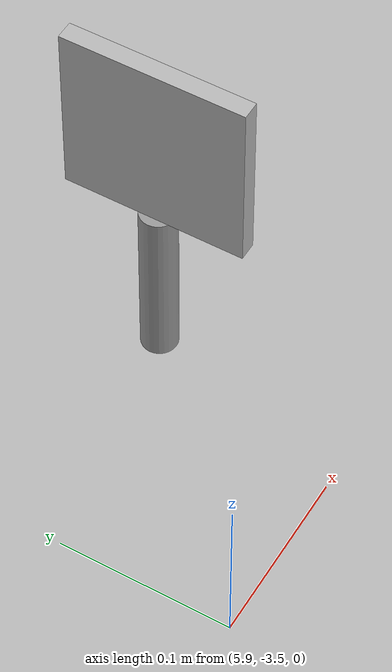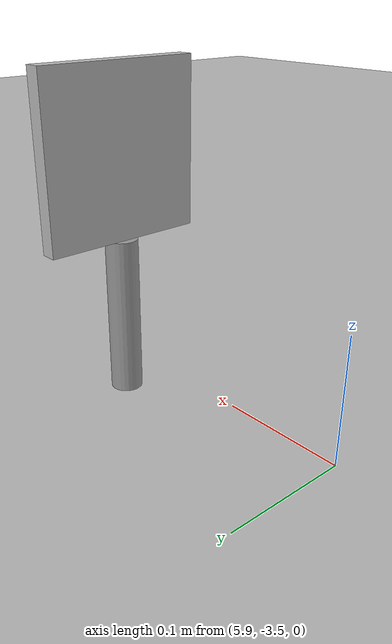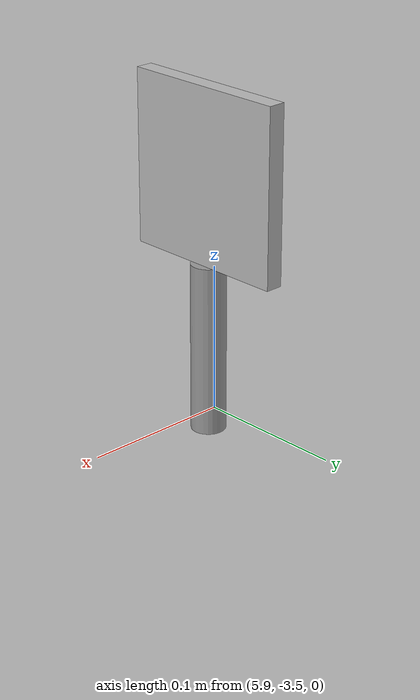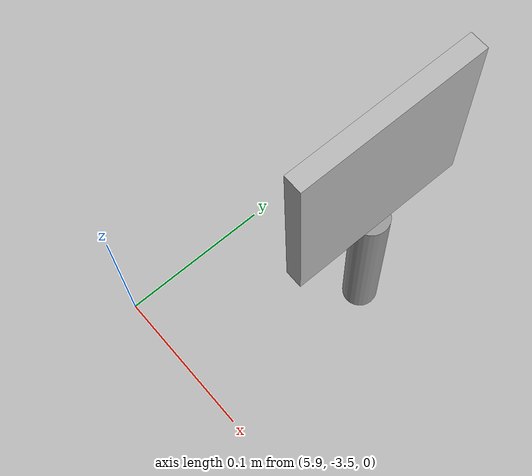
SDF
<sdf version="1.5">
  <world name="default">
    <!-- A global light source -->
    <include>
      <uri>model://sun</uri>
    </include>

    <!-- sign_board_30_small -->
    <include>
        <uri>model://sign_left_turn</uri>
        <pose>6.0 -3.4 0.06 0 0 0</pose>
    </include>
    <!-- road line test -->
    <include>
        <uri>model://road_line_test</uri>
        <pose>0 0 0.05 0 0 1.57</pose>
    </include>
  </world>
</sdf>

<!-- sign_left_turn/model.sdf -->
<sdf version='1.7'>
  <model name='sign_left_turn'>
    <link name='link_0'>
      <inertial>
        <mass>0.00689886</mass>
        <inertia>
          <ixx>4.77026e-05</ixx>
          <ixy>0</ixy>
          <ixz>0</ixz>
          <iyy>4.77026e-05</iyy>
          <iyz>0</iyz>
          <izz>9.04191e-05</izz>
        </inertia>
        <pose>0 0 0 0 -0 0</pose>
      </inertial>
      <pose>0 0 -0.1 0 -0 0</pose>
      <visual name='visual'>
        <pose>0 0 0 0 -0 0</pose>
        <geometry>
          <cylinder>
            <radius>0.05</radius>
            <length>0.02</length>
          </cylinder>
        </geometry>
        <material>
          <lighting>1</lighting>
          <script>
            <uri>file://media/materials/scripts/gazebo.material</uri>
            <name>Gazebo/Black</name>
          </script>
          <shader type='pixel'/>
          <emissive>0 0 0 1</emissive>
        </material>
        <transparency>0</transparency>
        <cast_shadows>1</cast_shadows>
      </visual>
      <collision name='collision'>
        <laser_retro>0</laser_retro>
        <max_contacts>10</max_contacts>
        <pose>0 0 0 0 -0 0</pose>
        <geometry>
          <cylinder>
            <radius>0.05</radius>
            <length>0.02</length>
          </cylinder>
        </geometry>
        <surface>
          <friction>
            <ode>
              <mu>1</mu>
              <mu2>1</mu2>
              <fdir1>0 0 0</fdir1>
              <slip1>0</slip1>
              <slip2>0</slip2>
            </ode>
            <torsional>
              <coefficient>1</coefficient>
              <patch_radius>0</patch_radius>
              <surface_radius>0</surface_radius>
              <use_patch_radius>1</use_patch_radius>
              <ode>
                <slip>0</slip>
              </ode>
            </torsional>
          </friction>
          <bounce>
            <restitution_coefficient>0</restitution_coefficient>
            <threshold>1e+06</threshold>
          </bounce>
          <contact>
            <collide_without_contact>0</collide_without_contact>
            <collide_without_contact_bitmask>1</collide_without_contact_bitmask>
            <collide_bitmask>1</collide_bitmask>
            <ode>
              <soft_cfm>0</soft_cfm>
              <soft_erp>0.2</soft_erp>
              <kp>1e+13</kp>
              <kd>1</kd>
              <max_vel>0.01</max_vel>
              <min_depth>0</min_depth>
            </ode>
            <bullet>
              <split_impulse>1</split_impulse>
              <split_impulse_penetration_threshold>-0.01</split_impulse_penetration_threshold>
              <soft_cfm>0</soft_cfm>
              <soft_erp>0.2</soft_erp>
              <kp>1e+13</kp>
              <kd>1</kd>
            </bullet>
          </contact>
        </surface>
      </collision>
    </link>
    <link name='link_1'>
      <inertial>
        <mass>0.000371732</mass>
        <inertia>
          <ixx>8.63892e-05</ixx>
          <ixy>0</ixy>
          <ixz>0</ixz>
          <iyy>8.63892e-05</iyy>
          <iyz>0</iyz>
          <izz>3.30867e-06</izz>
        </inertia>
        <pose>0 0 0 0 0 0</pose>
      </inertial>
      <pose>0 0 0 0 0 0</pose>
      <visual name='visual'>
        <pose>0 0 0 0 -0 0</pose>
        <geometry>
          <cylinder>
            <radius>0.01</radius>
            <length>0.2</length>
          </cylinder>
        </geometry>
        <material>
          <lighting>1</lighting>
          <script>
            <uri>file://media/materials/scripts/gazebo.material</uri>
            <name>Gazebo/Grey</name>
          </script>
          <shader type='pixel'/>
          <emissive>0 0 0 1</emissive>
        </material>
        <transparency>0</transparency>
        <cast_shadows>1</cast_shadows>
      </visual>
      <collision name='collision'>
        <laser_retro>0</laser_retro>
        <max_contacts>10</max_contacts>
        <pose>0 0 0 0 -0 0</pose>
        <geometry>
          <cylinder>
            <radius>0.01</radius>
            <length>0.2</length>
          </cylinder>
        </geometry>
        <surface>
          <friction>
            <ode>
              <mu>1</mu>
              <mu2>1</mu2>
              <fdir1>0 0 0</fdir1>
              <slip1>0</slip1>
              <slip2>0</slip2>
            </ode>
            <torsional>
              <coefficient>1</coefficient>
              <patch_radius>0</patch_radius>
              <surface_radius>0</surface_radius>
              <use_patch_radius>1</use_patch_radius>
              <ode>
                <slip>0</slip>
              </ode>
            </torsional>
          </friction>
          <bounce>
            <restitution_coefficient>0</restitution_coefficient>
            <threshold>1e+06</threshold>
          </bounce>
          <contact>
            <collide_without_contact>0</collide_without_contact>
            <collide_without_contact_bitmask>1</collide_without_contact_bitmask>
            <collide_bitmask>1</collide_bitmask>
            <ode>
              <soft_cfm>0</soft_cfm>
              <soft_erp>0.2</soft_erp>
              <kp>1e+13</kp>
              <kd>1</kd>
              <max_vel>0.01</max_vel>
              <min_depth>0</min_depth>
            </ode>
            <bullet>
              <split_impulse>1</split_impulse>
              <split_impulse_penetration_threshold>-0.01</split_impulse_penetration_threshold>
              <soft_cfm>0</soft_cfm>
              <soft_erp>0.2</soft_erp>
              <kp>1e+13</kp>
              <kd>1</kd>
            </bullet>
          </contact>
        </surface>
      </collision>
    </link>
    <link name='link_2'>
      <inertial>
        <mass>0.000803864</mass>
        <inertia>
          <ixx>0.000152874</ixx>
          <ixy>0</ixy>
          <ixz>0</ixz>
          <iyy>7.89053e-05</iyy>
          <iyz>0</iyz>
          <izz>8.06245e-05</izz>
        </inertia>
        <pose>0 0 0 0 0 0</pose>
      </inertial>
      <pose>0 0 0.15 0 0 0</pose>
      <visual name='visual'>
        <pose>0 0 0 0 0 0</pose>
        <geometry>
          <box>
            <size>0.01 0.1 0.1</size>
          </box>
        </geometry>

        <material>
          <script>
            <uri>model://sign_left_turn/materials/scripts</uri>
            <uri>model://sign_left_turn/materials/textures</uri>
            <name>sign_left_turn/Diffuse</name>
          </script>
        </material>

        <transparency>0</transparency>
        <cast_shadows>1</cast_shadows>
      </visual>
      <collision name='collision'>
        <laser_retro>0</laser_retro>
        <max_contacts>10</max_contacts>
        <pose>0 0 0 0 -0 0</pose>
        <geometry>
          <box>
            <size>0.01 0.1 0.1</size>
          </box>
        </geometry>
        <surface>
          <friction>
            <ode>
              <mu>1</mu>
              <mu2>1</mu2>
              <fdir1>0 0 0</fdir1>
              <slip1>0</slip1>
              <slip2>0</slip2>
            </ode>
            <torsional>
              <coefficient>1</coefficient>
              <patch_radius>0</patch_radius>
              <surface_radius>0</surface_radius>
              <use_patch_radius>1</use_patch_radius>
              <ode>
                <slip>0</slip>
              </ode>
            </torsional>
          </friction>
          <bounce>
            <restitution_coefficient>0</restitution_coefficient>
            <threshold>1e+06</threshold>
          </bounce>
          <contact>
            <collide_without_contact>0</collide_without_contact>
            <collide_without_contact_bitmask>1</collide_without_contact_bitmask>
            <collide_bitmask>1</collide_bitmask>
            <ode>
              <soft_cfm>0</soft_cfm>
              <soft_erp>0.2</soft_erp>
              <kp>1e+13</kp>
              <kd>1</kd>
              <max_vel>0.01</max_vel>
              <min_depth>0</min_depth>
            </ode>
            <bullet>
              <split_impulse>1</split_impulse>
              <split_impulse_penetration_threshold>-0.01</split_impulse_penetration_threshold>
              <soft_cfm>0</soft_cfm>
              <soft_erp>0.2</soft_erp>
              <kp>1e+13</kp>
              <kd>1</kd>
            </bullet>
          </contact>
        </surface>
      </collision>
    </link>
    <joint name='link_0_JOINT_0' type='fixed'>
      <parent>link_0</parent>
      <child>link_1</child>
      <pose>0 0 0 0 -0 0</pose>
      <physics>
        <ode>
          <limit>
            <cfm>0</cfm>
            <erp>0.2</erp>
          </limit>
          <suspension>
            <cfm>0</cfm>
            <erp>0.2</erp>
          </suspension>
        </ode>
      </physics>
    </joint>
    <joint name='link_0_JOINT_1' type='fixed'>
      <parent>link_0</parent>
      <child>link_2</child>
      <pose>0 0 0 0 -0 0</pose>
      <physics>
        <ode>
          <limit>
            <cfm>0</cfm>
            <erp>0.2</erp>
          </limit>
          <suspension>
            <cfm>0</cfm>
            <erp>0.2</erp>
          </suspension>
        </ode>
      </physics>
    </joint>
    <static>0</static>
    <allow_auto_disable>1</allow_auto_disable>
  </model>
</sdf>

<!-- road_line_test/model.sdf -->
<sdf version='1.7'>
  <model name='road'>
    <link name='link_0'>
      <inertial>
        <mass>10</mass>
        <inertia>
          <ixx>24.9463</ixx>
          <ixy>0</ixy>
          <ixz>0</ixz>
          <iyy>10.9133</iyy>
          <iyz>0</iyz>
          <izz>35.8596</izz>
        </inertia>
        <pose>0 0 0 0 -0 0</pose>
      </inertial>
      <pose>-0 -0 -0 0 -0 0</pose>
      <visual name='visual'>
        <pose>0 0 0 0 -0 0</pose>
        <geometry>
          <box>
            <size>10 15 0.02</size>
          </box>
        </geometry>
        <material>
          <script>
            <uri>model://road_line_test/materials/scripts</uri>
            <uri>model://road_line_test/materials/textures</uri>
            <name>road_line_test/Diffuse</name>
          </script>
        </material>
        <transparency>0</transparency>
        <cast_shadows>1</cast_shadows>
      </visual>
      <collision name='collision'>
        <laser_retro>0</laser_retro>
        <max_contacts>10</max_contacts>
        <pose>0 0 0 0 -0 0</pose>
        <geometry>
          <box>
            <size>10 15 0.02</size>
          </box>
        </geometry>
        <surface>
          <friction>
            <ode>
              <mu>1</mu>
              <mu2>1</mu2>
              <fdir1>0 0 0</fdir1>
              <slip1>0</slip1>
              <slip2>0</slip2>
            </ode>
            <torsional>
              <coefficient>1</coefficient>
              <patch_radius>0</patch_radius>
              <surface_radius>0</surface_radius>
              <use_patch_radius>1</use_patch_radius>
              <ode>
                <slip>0</slip>
              </ode>
            </torsional>
          </friction>
          <bounce>
            <restitution_coefficient>0</restitution_coefficient>
            <threshold>1e+06</threshold>
          </bounce>
          <contact>
            <collide_without_contact>0</collide_without_contact>
            <collide_without_contact_bitmask>1</collide_without_contact_bitmask>
            <collide_bitmask>1</collide_bitmask>
            <ode>
              <soft_cfm>0</soft_cfm>
              <soft_erp>0.2</soft_erp>
              <kp>1e+13</kp>
              <kd>1</kd>
              <max_vel>0.01</max_vel>
              <min_depth>0</min_depth>
            </ode>
            <bullet>
              <split_impulse>1</split_impulse>
              <split_impulse_penetration_threshold>-0.01</split_impulse_penetration_threshold>
              <soft_cfm>0</soft_cfm>
              <soft_erp>0.2</soft_erp>
              <kp>1e+13</kp>
              <kd>1</kd>
            </bullet>
          </contact>
        </surface>
      </collision>
    </link>
    <static>0</static>
    <allow_auto_disable>1</allow_auto_disable>
  </model>
</sdf>
